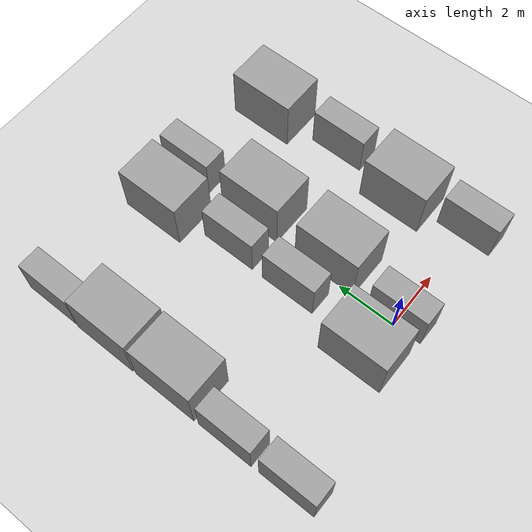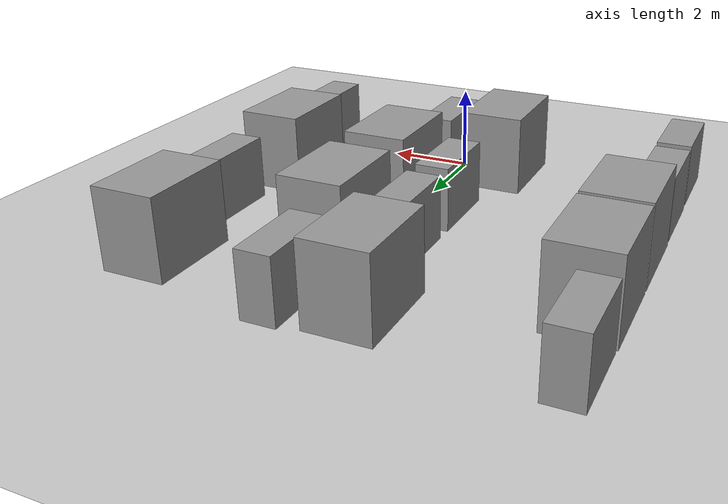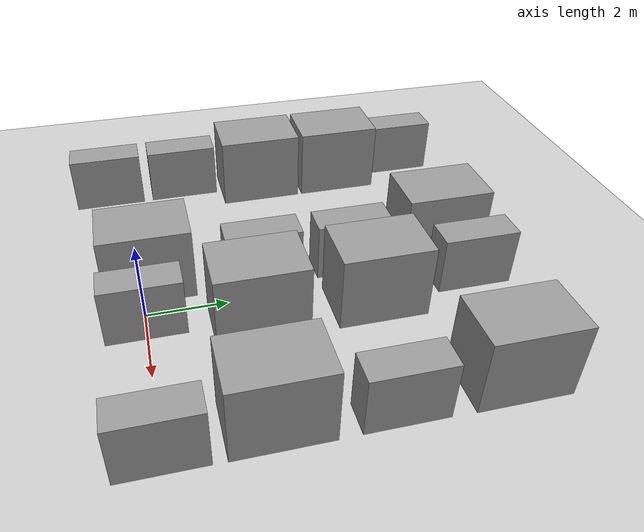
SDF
<sdf version="1.6">
 <world name="default">
  <model name="ground_plane">
   <static>1</static>
   <link name="link">
    <collision name="collision">
     <geometry><plane><normal>0 0 1</normal><size>100 100</size></plane></geometry>
     <surface><friction><ode><mu>100</mu><mu2>50</mu2></ode></friction></surface>
    </collision>
    <visual name="visual">
     <cast_shadows>0</cast_shadows>
     <geometry><plane><normal>0 0 1</normal><size>100 100</size></plane></geometry>
     <material>
      <script><uri>file://media/materials/scripts/gazebo.material</uri><name>Gazebo/Grey</name></script>
     </material>
    </visual>
   </link>
  </model>
  <model name="Machine_08x19">
   <link name="link_1">
    <pose>0 0 0.95 0 -0 0</pose>
    <inertial>
     <mass>1000</mass>
     <inertia><ixx>488.333</ixx><ixy>0</ixy><ixz>0</ixz><iyy>240.833</iyy><iyz>0</iyz><izz>354.167</izz></inertia>
    </inertial>
    <visual name="visual">
     <geometry><box><size>0.8 1.9 1.5</size></box></geometry>
     <material>
      <lighting>1</lighting>
      <script><uri>file://media/materials/scripts/gazebo.material</uri><name>Gazebo/Grey</name></script>
      <ambient>0.3 0.3 0.3 1</ambient>
      <diffuse>0.7 0.7 0.7 1</diffuse>
      <specular>0.01 0.01 0.01 1</specular>
      <emissive>0 0 0 1</emissive>
      <shader type="vertex"><normal_map>__default__</normal_map></shader>
     </material>
    </visual>
    <collision name="collision">
     <geometry><box><size>0.8 1.9 1.5</size></box></geometry>
     <surface>
      <friction>
       <ode><mu>1</mu><mu2>1</mu2><fdir1>0 0 0</fdir1><slip1>0</slip1><slip2>0</slip2></ode>
       <torsional>
        <coefficient>1</coefficient>
        <patch_radius>0</patch_radius>
        <surface_radius>0</surface_radius>
        <use_patch_radius>1</use_patch_radius>
        <ode><slip>0</slip></ode>
       </torsional>
      </friction>
      <bounce><restitution_coefficient>0</restitution_coefficient><threshold>1e+06</threshold></bounce>
      <contact>
       <collide_without_contact>0</collide_without_contact>
       <collide_without_contact_bitmask>1</collide_without_contact_bitmask>
       <collide_bitmask>1</collide_bitmask>
       <ode>
        <soft_cfm>0</soft_cfm>
        <soft_erp>0.2</soft_erp>
        <kp>1e+13</kp>
        <kd>1</kd>
        <max_vel>0.01</max_vel>
        <min_depth>0</min_depth>
       </ode>
       <bullet>
        <split_impulse>1</split_impulse>
        <split_impulse_penetration_threshold>-0.01</split_impulse_penetration_threshold>
        <soft_cfm>0</soft_cfm>
        <soft_erp>0.2</soft_erp>
        <kp>1e+13</kp>
        <kd>1</kd>
       </bullet>
      </contact>
     </surface>
    </collision>
   </link>
   <static>0</static>
   <pose>0.405714 -0.010713 -0.2 0 -0 0</pose>
  </model>
  <model name="Machine_15x22">
   <link name="link_1">
    <inertial>
     <mass>1000</mass>
     <inertia><ixx>704.167</ixx><ixy>0</ixy><ixz>0</ixz><iyy>488.333</iyy><iyz>0</iyz><izz>590.833</izz></inertia>
    </inertial>
    <visual name="visual">
     <geometry><box><size>1.5 2.2 1.9</size></box></geometry>
     <material>
      <lighting>1</lighting>
      <script><uri>file://media/materials/scripts/gazebo.material</uri><name>Gazebo/Grey</name></script>
      <ambient>0.3 0.3 0.3 1</ambient>
      <diffuse>0.7 0.7 0.7 1</diffuse>
      <specular>0.01 0.01 0.01 1</specular>
      <emissive>0 0 0 1</emissive>
      <shader type="vertex"><normal_map>__default__</normal_map></shader>
     </material>
    </visual>
    <collision name="collision">
     <geometry><box><size>1.5 2.2 1.9</size></box></geometry>
     <surface>
      <friction>
       <ode><mu>1</mu><mu2>1</mu2><fdir1>0 0 0</fdir1><slip1>0</slip1><slip2>0</slip2></ode>
       <torsional>
        <coefficient>1</coefficient>
        <patch_radius>0</patch_radius>
        <surface_radius>0</surface_radius>
        <use_patch_radius>1</use_patch_radius>
        <ode><slip>0</slip></ode>
       </torsional>
      </friction>
      <bounce><restitution_coefficient>0</restitution_coefficient><threshold>1e+06</threshold></bounce>
      <contact>
       <collide_without_contact>0</collide_without_contact>
       <collide_without_contact_bitmask>1</collide_without_contact_bitmask>
       <collide_bitmask>1</collide_bitmask>
       <ode>
        <soft_cfm>0</soft_cfm>
        <soft_erp>0.2</soft_erp>
        <kp>1e+13</kp>
        <kd>1</kd>
        <max_vel>0.01</max_vel>
        <min_depth>0</min_depth>
       </ode>
       <bullet>
        <split_impulse>1</split_impulse>
        <split_impulse_penetration_threshold>-0.01</split_impulse_penetration_threshold>
        <soft_cfm>0</soft_cfm>
        <soft_erp>0.2</soft_erp>
        <kp>1e+13</kp>
        <kd>1</kd>
       </bullet>
      </contact>
     </surface>
    </collision>
   </link>
   <static>0</static>
   <pose>0.76024 2.59177 0.95 0 -0 0</pose>
  </model>
  <model name="Machine_15x22_clone_clone_0">
   <link name="link_1">
    <inertial>
     <mass>1000</mass>
     <inertia><ixx>704.167</ixx><ixy>0</ixy><ixz>0</ixz><iyy>488.333</iyy><iyz>0</iyz><izz>590.833</izz></inertia>
    </inertial>
    <visual name="visual">
     <geometry><box><size>1.5 2.2 1.9</size></box></geometry>
     <material>
      <lighting>1</lighting>
      <script><uri>file://media/materials/scripts/gazebo.material</uri><name>Gazebo/Grey</name></script>
      <ambient>0.3 0.3 0.3 1</ambient>
      <diffuse>0.7 0.7 0.7 1</diffuse>
      <specular>0.01 0.01 0.01 1</specular>
      <emissive>0 0 0 1</emissive>
      <shader type="vertex"><normal_map>__default__</normal_map></shader>
     </material>
    </visual>
    <collision name="collision">
     <geometry><box><size>1.5 2.2 1.9</size></box></geometry>
     <surface>
      <friction>
       <ode><mu>1</mu><mu2>1</mu2><fdir1>0 0 0</fdir1><slip1>0</slip1><slip2>0</slip2></ode>
       <torsional>
        <coefficient>1</coefficient>
        <patch_radius>0</patch_radius>
        <surface_radius>0</surface_radius>
        <use_patch_radius>1</use_patch_radius>
        <ode><slip>0</slip></ode>
       </torsional>
      </friction>
      <bounce><restitution_coefficient>0</restitution_coefficient><threshold>1e+06</threshold></bounce>
      <contact>
       <collide_without_contact>0</collide_without_contact>
       <collide_without_contact_bitmask>1</collide_without_contact_bitmask>
       <collide_bitmask>1</collide_bitmask>
       <ode>
        <soft_cfm>0</soft_cfm>
        <soft_erp>0.2</soft_erp>
        <kp>1e+13</kp>
        <kd>1</kd>
        <max_vel>0.01</max_vel>
        <min_depth>0</min_depth>
       </ode>
       <bullet>
        <split_impulse>1</split_impulse>
        <split_impulse_penetration_threshold>-0.01</split_impulse_penetration_threshold>
        <soft_cfm>0</soft_cfm>
        <soft_erp>0.2</soft_erp>
        <kp>1e+13</kp>
        <kd>1</kd>
       </bullet>
      </contact>
     </surface>
    </collision>
   </link>
   <static>0</static>
   <pose>-1.19751 0.209867 0.95 0 -0 0</pose>
  </model>
  <model name="Machine_15x22_clone_clone_3">
   <link name="link_1">
    <inertial>
     <mass>1000</mass>
     <inertia><ixx>704.167</ixx><ixy>0</ixy><ixz>0</ixz><iyy>488.333</iyy><iyz>0</iyz><izz>590.833</izz></inertia>
    </inertial>
    <visual name="visual">
     <geometry><box><size>1.5 2.2 1.9</size></box></geometry>
     <material>
      <lighting>1</lighting>
      <script><uri>file://media/materials/scripts/gazebo.material</uri><name>Gazebo/Grey</name></script>
      <ambient>0.3 0.3 0.3 1</ambient>
      <diffuse>0.7 0.7 0.7 1</diffuse>
      <specular>0.01 0.01 0.01 1</specular>
      <emissive>0 0 0 1</emissive>
      <shader type="vertex"><normal_map>__default__</normal_map></shader>
     </material>
    </visual>
    <collision name="collision">
     <geometry><box><size>1.5 2.2 1.9</size></box></geometry>
     <surface>
      <friction>
       <ode><mu>1</mu><mu2>1</mu2><fdir1>0 0 0</fdir1><slip1>0</slip1><slip2>0</slip2></ode>
       <torsional>
        <coefficient>1</coefficient>
        <patch_radius>0</patch_radius>
        <surface_radius>0</surface_radius>
        <use_patch_radius>1</use_patch_radius>
        <ode><slip>0</slip></ode>
       </torsional>
      </friction>
      <bounce><restitution_coefficient>0</restitution_coefficient><threshold>1e+06</threshold></bounce>
      <contact>
       <collide_without_contact>0</collide_without_contact>
       <collide_without_contact_bitmask>1</collide_without_contact_bitmask>
       <collide_bitmask>1</collide_bitmask>
       <ode>
        <soft_cfm>0</soft_cfm>
        <soft_erp>0.2</soft_erp>
        <kp>1e+13</kp>
        <kd>1</kd>
        <max_vel>0.01</max_vel>
        <min_depth>0</min_depth>
       </ode>
       <bullet>
        <split_impulse>1</split_impulse>
        <split_impulse_penetration_threshold>-0.01</split_impulse_penetration_threshold>
        <soft_cfm>0</soft_cfm>
        <soft_erp>0.2</soft_erp>
        <kp>1e+13</kp>
        <kd>1</kd>
       </bullet>
      </contact>
     </surface>
    </collision>
   </link>
   <static>0</static>
   <pose>0.741989 5.47826 0.95 0 -0 0</pose>
  </model>
  <model name="Machine_15x22_clone_clone_6">
   <link name="link_1">
    <inertial>
     <mass>1000</mass>
     <inertia><ixx>704.167</ixx><ixy>0</ixy><ixz>0</ixz><iyy>488.333</iyy><iyz>0</iyz><izz>590.833</izz></inertia>
    </inertial>
    <visual name="visual">
     <geometry><box><size>1.5 2.2 1.9</size></box></geometry>
     <material>
      <lighting>1</lighting>
      <script><uri>file://media/materials/scripts/gazebo.material</uri><name>Gazebo/Grey</name></script>
      <ambient>0.3 0.3 0.3 1</ambient>
      <diffuse>0.7 0.7 0.7 1</diffuse>
      <specular>0.01 0.01 0.01 1</specular>
      <emissive>0 0 0 1</emissive>
      <shader type="vertex"><normal_map>__default__</normal_map></shader>
     </material>
    </visual>
    <collision name="collision">
     <geometry><box><size>1.5 2.2 1.9</size></box></geometry>
     <surface>
      <friction>
       <ode><mu>1</mu><mu2>1</mu2><fdir1>0 0 0</fdir1><slip1>0</slip1><slip2>0</slip2></ode>
       <torsional>
        <coefficient>1</coefficient>
        <patch_radius>0</patch_radius>
        <surface_radius>0</surface_radius>
        <use_patch_radius>1</use_patch_radius>
        <ode><slip>0</slip></ode>
       </torsional>
      </friction>
      <bounce><restitution_coefficient>0</restitution_coefficient><threshold>1e+06</threshold></bounce>
      <contact>
       <collide_without_contact>0</collide_without_contact>
       <collide_without_contact_bitmask>1</collide_without_contact_bitmask>
       <collide_bitmask>1</collide_bitmask>
       <ode>
        <soft_cfm>0</soft_cfm>
        <soft_erp>0.2</soft_erp>
        <kp>1e+13</kp>
        <kd>1</kd>
        <max_vel>0.01</max_vel>
        <min_depth>0</min_depth>
       </ode>
       <bullet>
        <split_impulse>1</split_impulse>
        <split_impulse_penetration_threshold>-0.01</split_impulse_penetration_threshold>
        <soft_cfm>0</soft_cfm>
        <soft_erp>0.2</soft_erp>
        <kp>1e+13</kp>
        <kd>1</kd>
       </bullet>
      </contact>
     </surface>
    </collision>
   </link>
   <static>0</static>
   <pose>-5.11143 3.77632 0.95 0 -0 0</pose>
  </model>
  <model name="Machine_15x22_clone_clone_9">
   <link name="link_1">
    <inertial>
     <mass>1000</mass>
     <inertia><ixx>704.167</ixx><ixy>0</ixy><ixz>0</ixz><iyy>488.333</iyy><iyz>0</iyz><izz>590.833</izz></inertia>
    </inertial>
    <visual name="visual">
     <geometry><box><size>1.5 2.2 1.9</size></box></geometry>
     <material>
      <lighting>1</lighting>
      <script><uri>file://media/materials/scripts/gazebo.material</uri><name>Gazebo/Grey</name></script>
      <ambient>0.3 0.3 0.3 1</ambient>
      <diffuse>0.7 0.7 0.7 1</diffuse>
      <specular>0.01 0.01 0.01 1</specular>
      <emissive>0 0 0 1</emissive>
      <shader type="vertex"><normal_map>__default__</normal_map></shader>
     </material>
    </visual>
    <collision name="collision">
     <geometry><box><size>1.5 2.2 1.9</size></box></geometry>
     <surface>
      <friction>
       <ode><mu>1</mu><mu2>1</mu2><fdir1>0 0 0</fdir1><slip1>0</slip1><slip2>0</slip2></ode>
       <torsional>
        <coefficient>1</coefficient>
        <patch_radius>0</patch_radius>
        <surface_radius>0</surface_radius>
        <use_patch_radius>1</use_patch_radius>
        <ode><slip>0</slip></ode>
       </torsional>
      </friction>
      <bounce><restitution_coefficient>0</restitution_coefficient><threshold>1e+06</threshold></bounce>
      <contact>
       <collide_without_contact>0</collide_without_contact>
       <collide_without_contact_bitmask>1</collide_without_contact_bitmask>
       <collide_bitmask>1</collide_bitmask>
       <ode>
        <soft_cfm>0</soft_cfm>
        <soft_erp>0.2</soft_erp>
        <kp>1e+13</kp>
        <kd>1</kd>
        <max_vel>0.01</max_vel>
        <min_depth>0</min_depth>
       </ode>
       <bullet>
        <split_impulse>1</split_impulse>
        <split_impulse_penetration_threshold>-0.01</split_impulse_penetration_threshold>
        <soft_cfm>0</soft_cfm>
        <soft_erp>0.2</soft_erp>
        <kp>1e+13</kp>
        <kd>1</kd>
       </bullet>
      </contact>
     </surface>
    </collision>
   </link>
   <static>0</static>
   <pose>3.74714 2.32081 0.95 0 -0 0</pose>
  </model>
  <model name="Machine_15x22_clone_clone_10">
   <link name="link_1">
    <inertial>
     <mass>1000</mass>
     <inertia><ixx>704.167</ixx><ixy>0</ixy><ixz>0</ixz><iyy>488.333</iyy><iyz>0</iyz><izz>590.833</izz></inertia>
    </inertial>
    <visual name="visual">
     <geometry><box><size>1.5 2.2 1.9</size></box></geometry>
     <material>
      <lighting>1</lighting>
      <script><uri>file://media/materials/scripts/gazebo.material</uri><name>Gazebo/Grey</name></script>
      <ambient>0.3 0.3 0.3 1</ambient>
      <diffuse>0.7 0.7 0.7 1</diffuse>
      <specular>0.01 0.01 0.01 1</specular>
      <emissive>0 0 0 1</emissive>
      <shader type="vertex"><normal_map>__default__</normal_map></shader>
     </material>
    </visual>
    <collision name="collision">
     <geometry><box><size>1.5 2.2 1.9</size></box></geometry>
     <surface>
      <friction>
       <ode><mu>1</mu><mu2>1</mu2><fdir1>0 0 0</fdir1><slip1>0</slip1><slip2>0</slip2></ode>
       <torsional>
        <coefficient>1</coefficient>
        <patch_radius>0</patch_radius>
        <surface_radius>0</surface_radius>
        <use_patch_radius>1</use_patch_radius>
        <ode><slip>0</slip></ode>
       </torsional>
      </friction>
      <bounce><restitution_coefficient>0</restitution_coefficient><threshold>1e+06</threshold></bounce>
      <contact>
       <collide_without_contact>0</collide_without_contact>
       <collide_without_contact_bitmask>1</collide_without_contact_bitmask>
       <collide_bitmask>1</collide_bitmask>
       <ode>
        <soft_cfm>0</soft_cfm>
        <soft_erp>0.2</soft_erp>
        <kp>1e+13</kp>
        <kd>1</kd>
        <max_vel>0.01</max_vel>
        <min_depth>0</min_depth>
       </ode>
       <bullet>
        <split_impulse>1</split_impulse>
        <split_impulse_penetration_threshold>-0.01</split_impulse_penetration_threshold>
        <soft_cfm>0</soft_cfm>
        <soft_erp>0.2</soft_erp>
        <kp>1e+13</kp>
        <kd>1</kd>
       </bullet>
      </contact>
     </surface>
    </collision>
   </link>
   <static>0</static>
   <pose>3.76584 7.46429 0.95 0 -0 0</pose>
  </model>
  <model name="Machine_08x19_clone">
   <link name="link_1">
    <pose>0 0 0.95 0 -0 0</pose>
    <inertial>
     <mass>1000</mass>
     <inertia><ixx>488.333</ixx><ixy>0</ixy><ixz>0</ixz><iyy>240.833</iyy><iyz>0</iyz><izz>354.167</izz></inertia>
    </inertial>
    <visual name="visual">
     <geometry><box><size>0.8 1.9 1.5</size></box></geometry>
     <material>
      <lighting>1</lighting>
      <script><uri>file://media/materials/scripts/gazebo.material</uri><name>Gazebo/Grey</name></script>
      <ambient>0.3 0.3 0.3 1</ambient>
      <diffuse>0.7 0.7 0.7 1</diffuse>
      <specular>0.01 0.01 0.01 1</specular>
      <emissive>0 0 0 1</emissive>
      <shader type="vertex"><normal_map>__default__</normal_map></shader>
     </material>
    </visual>
    <collision name="collision">
     <geometry><box><size>0.8 1.9 1.5</size></box></geometry>
     <surface>
      <friction>
       <ode><mu>1</mu><mu2>1</mu2><fdir1>0 0 0</fdir1><slip1>0</slip1><slip2>0</slip2></ode>
       <torsional>
        <coefficient>1</coefficient>
        <patch_radius>0</patch_radius>
        <surface_radius>0</surface_radius>
        <use_patch_radius>1</use_patch_radius>
        <ode><slip>0</slip></ode>
       </torsional>
      </friction>
      <bounce><restitution_coefficient>0</restitution_coefficient><threshold>1e+06</threshold></bounce>
      <contact>
       <collide_without_contact>0</collide_without_contact>
       <collide_without_contact_bitmask>1</collide_without_contact_bitmask>
       <collide_bitmask>1</collide_bitmask>
       <ode>
        <soft_cfm>0</soft_cfm>
        <soft_erp>0.2</soft_erp>
        <kp>1e+13</kp>
        <kd>1</kd>
        <max_vel>0.01</max_vel>
        <min_depth>0</min_depth>
       </ode>
       <bullet>
        <split_impulse>1</split_impulse>
        <split_impulse_penetration_threshold>-0.01</split_impulse_penetration_threshold>
        <soft_cfm>0</soft_cfm>
        <soft_erp>0.2</soft_erp>
        <kp>1e+13</kp>
        <kd>1</kd>
       </bullet>
      </contact>
     </surface>
    </collision>
   </link>
   <static>0</static>
   <pose>-5.42861 -0.580294 -0.2 0 -0 0</pose>
  </model>
  <model name="Machine_08x19_clone_0">
   <link name="link_1">
    <pose>0 0 0.95 0 -0 0</pose>
    <inertial>
     <mass>1000</mass>
     <inertia><ixx>488.333</ixx><ixy>0</ixy><ixz>0</ixz><iyy>240.833</iyy><iyz>0</iyz><izz>354.167</izz></inertia>
    </inertial>
    <visual name="visual">
     <geometry><box><size>0.8 1.9 1.5</size></box></geometry>
     <material>
      <lighting>1</lighting>
      <script><uri>file://media/materials/scripts/gazebo.material</uri><name>Gazebo/Grey</name></script>
      <ambient>0.3 0.3 0.3 1</ambient>
      <diffuse>0.7 0.7 0.7 1</diffuse>
      <specular>0.01 0.01 0.01 1</specular>
      <emissive>0 0 0 1</emissive>
      <shader type="vertex"><normal_map>__default__</normal_map></shader>
     </material>
    </visual>
    <collision name="collision">
     <geometry><box><size>0.8 1.9 1.5</size></box></geometry>
     <surface>
      <friction>
       <ode><mu>1</mu><mu2>1</mu2><fdir1>0 0 0</fdir1><slip1>0</slip1><slip2>0</slip2></ode>
       <torsional>
        <coefficient>1</coefficient>
        <patch_radius>0</patch_radius>
        <surface_radius>0</surface_radius>
        <use_patch_radius>1</use_patch_radius>
        <ode><slip>0</slip></ode>
       </torsional>
      </friction>
      <bounce><restitution_coefficient>0</restitution_coefficient><threshold>1e+06</threshold></bounce>
      <contact>
       <collide_without_contact>0</collide_without_contact>
       <collide_without_contact_bitmask>1</collide_without_contact_bitmask>
       <collide_bitmask>1</collide_bitmask>
       <ode>
        <soft_cfm>0</soft_cfm>
        <soft_erp>0.2</soft_erp>
        <kp>1e+13</kp>
        <kd>1</kd>
        <max_vel>0.01</max_vel>
        <min_depth>0</min_depth>
       </ode>
       <bullet>
        <split_impulse>1</split_impulse>
        <split_impulse_penetration_threshold>-0.01</split_impulse_penetration_threshold>
        <soft_cfm>0</soft_cfm>
        <soft_erp>0.2</soft_erp>
        <kp>1e+13</kp>
        <kd>1</kd>
       </bullet>
      </contact>
     </surface>
    </collision>
   </link>
   <static>0</static>
   <pose>-5.4446 1.57197 -0.2 0 -0 0</pose>
  </model>
  <model name="Machine_08x19_clone_1">
   <link name="link_1">
    <pose>0 0 0.95 0 -0 0</pose>
    <inertial>
     <mass>1000</mass>
     <inertia><ixx>488.333</ixx><ixy>0</ixy><ixz>0</ixz><iyy>240.833</iyy><iyz>0</iyz><izz>354.167</izz></inertia>
    </inertial>
    <visual name="visual">
     <geometry><box><size>0.8 1.9 1.5</size></box></geometry>
     <material>
      <lighting>1</lighting>
      <script><uri>file://media/materials/scripts/gazebo.material</uri><name>Gazebo/Grey</name></script>
      <ambient>0.3 0.3 0.3 1</ambient>
      <diffuse>0.7 0.7 0.7 1</diffuse>
      <specular>0.01 0.01 0.01 1</specular>
      <emissive>0 0 0 1</emissive>
      <shader type="vertex"><normal_map>__default__</normal_map></shader>
     </material>
    </visual>
    <collision name="collision">
     <geometry><box><size>0.8 1.9 1.5</size></box></geometry>
     <surface>
      <friction>
       <ode><mu>1</mu><mu2>1</mu2><fdir1>0 0 0</fdir1><slip1>0</slip1><slip2>0</slip2></ode>
       <torsional>
        <coefficient>1</coefficient>
        <patch_radius>0</patch_radius>
        <surface_radius>0</surface_radius>
        <use_patch_radius>1</use_patch_radius>
        <ode><slip>0</slip></ode>
       </torsional>
      </friction>
      <bounce><restitution_coefficient>0</restitution_coefficient><threshold>1e+06</threshold></bounce>
      <contact>
       <collide_without_contact>0</collide_without_contact>
       <collide_without_contact_bitmask>1</collide_without_contact_bitmask>
       <collide_bitmask>1</collide_bitmask>
       <ode>
        <soft_cfm>0</soft_cfm>
        <soft_erp>0.2</soft_erp>
        <kp>1e+13</kp>
        <kd>1</kd>
        <max_vel>0.01</max_vel>
        <min_depth>0</min_depth>
       </ode>
       <bullet>
        <split_impulse>1</split_impulse>
        <split_impulse_penetration_threshold>-0.01</split_impulse_penetration_threshold>
        <soft_cfm>0</soft_cfm>
        <soft_erp>0.2</soft_erp>
        <kp>1e+13</kp>
        <kd>1</kd>
       </bullet>
      </contact>
     </surface>
    </collision>
   </link>
   <static>0</static>
   <pose>-0.817426 3.02752 -0.2 0 -0 0</pose>
  </model>
  <model name="Machine_08x19_clone_2">
   <link name="link_1">
    <pose>0 0 0.95 0 -0 0</pose>
    <inertial>
     <mass>1000</mass>
     <inertia><ixx>488.333</ixx><ixy>0</ixy><ixz>0</ixz><iyy>240.833</iyy><iyz>0</iyz><izz>354.167</izz></inertia>
    </inertial>
    <visual name="visual">
     <geometry><box><size>0.8 1.9 1.5</size></box></geometry>
     <material>
      <lighting>1</lighting>
      <script><uri>file://media/materials/scripts/gazebo.material</uri><name>Gazebo/Grey</name></script>
      <ambient>0.3 0.3 0.3 1</ambient>
      <diffuse>0.7 0.7 0.7 1</diffuse>
      <specular>0.01 0.01 0.01 1</specular>
      <emissive>0 0 0 1</emissive>
      <shader type="vertex"><normal_map>__default__</normal_map></shader>
     </material>
    </visual>
    <collision name="collision">
     <geometry><box><size>0.8 1.9 1.5</size></box></geometry>
     <surface>
      <friction>
       <ode><mu>1</mu><mu2>1</mu2><fdir1>0 0 0</fdir1><slip1>0</slip1><slip2>0</slip2></ode>
       <torsional>
        <coefficient>1</coefficient>
        <patch_radius>0</patch_radius>
        <surface_radius>0</surface_radius>
        <use_patch_radius>1</use_patch_radius>
        <ode><slip>0</slip></ode>
       </torsional>
      </friction>
      <bounce><restitution_coefficient>0</restitution_coefficient><threshold>1e+06</threshold></bounce>
      <contact>
       <collide_without_contact>0</collide_without_contact>
       <collide_without_contact_bitmask>1</collide_without_contact_bitmask>
       <collide_bitmask>1</collide_bitmask>
       <ode>
        <soft_cfm>0</soft_cfm>
        <soft_erp>0.2</soft_erp>
        <kp>1e+13</kp>
        <kd>1</kd>
        <max_vel>0.01</max_vel>
        <min_depth>0</min_depth>
       </ode>
       <bullet>
        <split_impulse>1</split_impulse>
        <split_impulse_penetration_threshold>-0.01</split_impulse_penetration_threshold>
        <soft_cfm>0</soft_cfm>
        <soft_erp>0.2</soft_erp>
        <kp>1e+13</kp>
        <kd>1</kd>
       </bullet>
      </contact>
     </surface>
    </collision>
   </link>
   <static>0</static>
   <pose>4.08566 -0.025438 -0.2 0 -0 0</pose>
  </model>
  <model name="Machine_08x19_clone_4">
   <link name="link_1">
    <pose>0 0 0.95 0 -0 0</pose>
    <inertial>
     <mass>1000</mass>
     <inertia><ixx>488.333</ixx><ixy>0</ixy><ixz>0</ixz><iyy>240.833</iyy><iyz>0</iyz><izz>354.167</izz></inertia>
    </inertial>
    <visual name="visual">
     <geometry><box><size>0.8 1.9 1.5</size></box></geometry>
     <material>
      <lighting>1</lighting>
      <script><uri>file://media/materials/scripts/gazebo.material</uri><name>Gazebo/Grey</name></script>
      <ambient>0.3 0.3 0.3 1</ambient>
      <diffuse>0.7 0.7 0.7 1</diffuse>
      <specular>0.01 0.01 0.01 1</specular>
      <emissive>0 0 0 1</emissive>
      <shader type="vertex"><normal_map>__default__</normal_map></shader>
     </material>
    </visual>
    <collision name="collision">
     <geometry><box><size>0.8 1.9 1.5</size></box></geometry>
     <surface>
      <friction>
       <ode><mu>1</mu><mu2>1</mu2><fdir1>0 0 0</fdir1><slip1>0</slip1><slip2>0</slip2></ode>
       <torsional>
        <coefficient>1</coefficient>
        <patch_radius>0</patch_radius>
        <surface_radius>0</surface_radius>
        <use_patch_radius>1</use_patch_radius>
        <ode><slip>0</slip></ode>
       </torsional>
      </friction>
      <bounce><restitution_coefficient>0</restitution_coefficient><threshold>1e+06</threshold></bounce>
      <contact>
       <collide_without_contact>0</collide_without_contact>
       <collide_without_contact_bitmask>1</collide_without_contact_bitmask>
       <collide_bitmask>1</collide_bitmask>
       <ode>
        <soft_cfm>0</soft_cfm>
        <soft_erp>0.2</soft_erp>
        <kp>1e+13</kp>
        <kd>1</kd>
        <max_vel>0.01</max_vel>
        <min_depth>0</min_depth>
       </ode>
       <bullet>
        <split_impulse>1</split_impulse>
        <split_impulse_penetration_threshold>-0.01</split_impulse_penetration_threshold>
        <soft_cfm>0</soft_cfm>
        <soft_erp>0.2</soft_erp>
        <kp>1e+13</kp>
        <kd>1</kd>
       </bullet>
      </contact>
     </surface>
    </collision>
   </link>
   <static>0</static>
   <pose>0.420552 8.09891 -0.2 0 -0 0</pose>
  </model>
  <model name="Machine_08x19_clone_5">
   <link name="link_1">
    <pose>0 0 0.95 0 -0 0</pose>
    <inertial>
     <mass>1000</mass>
     <inertia><ixx>488.333</ixx><ixy>0</ixy><ixz>0</ixz><iyy>240.833</iyy><iyz>0</iyz><izz>354.167</izz></inertia>
    </inertial>
    <visual name="visual">
     <geometry><box><size>0.8 1.9 1.5</size></box></geometry>
     <material>
      <lighting>1</lighting>
      <script><uri>file://media/materials/scripts/gazebo.material</uri><name>Gazebo/Grey</name></script>
      <ambient>0.3 0.3 0.3 1</ambient>
      <diffuse>0.7 0.7 0.7 1</diffuse>
      <specular>0.01 0.01 0.01 1</specular>
      <emissive>0 0 0 1</emissive>
      <shader type="vertex"><normal_map>__default__</normal_map></shader>
     </material>
    </visual>
    <collision name="collision">
     <geometry><box><size>0.8 1.9 1.5</size></box></geometry>
     <surface>
      <friction>
       <ode><mu>1</mu><mu2>1</mu2><fdir1>0 0 0</fdir1><slip1>0</slip1><slip2>0</slip2></ode>
       <torsional>
        <coefficient>1</coefficient>
        <patch_radius>0</patch_radius>
        <surface_radius>0</surface_radius>
        <use_patch_radius>1</use_patch_radius>
        <ode><slip>0</slip></ode>
       </torsional>
      </friction>
      <bounce><restitution_coefficient>0</restitution_coefficient><threshold>1e+06</threshold></bounce>
      <contact>
       <collide_without_contact>0</collide_without_contact>
       <collide_without_contact_bitmask>1</collide_without_contact_bitmask>
       <collide_bitmask>1</collide_bitmask>
       <ode>
        <soft_cfm>0</soft_cfm>
        <soft_erp>0.2</soft_erp>
        <kp>1e+13</kp>
        <kd>1</kd>
        <max_vel>0.01</max_vel>
        <min_depth>0</min_depth>
       </ode>
       <bullet>
        <split_impulse>1</split_impulse>
        <split_impulse_penetration_threshold>-0.01</split_impulse_penetration_threshold>
        <soft_cfm>0</soft_cfm>
        <soft_erp>0.2</soft_erp>
        <kp>1e+13</kp>
        <kd>1</kd>
       </bullet>
      </contact>
     </surface>
    </collision>
   </link>
   <static>0</static>
   <pose>-5.43857 8.24151 -0.2 0 -0 0</pose>
  </model>
  <model name="Machine_08x19_clone_11">
   <link name="link_1">
    <pose>0 0 0.95 0 -0 0</pose>
    <inertial>
     <mass>1000</mass>
     <inertia><ixx>488.333</ixx><ixy>0</ixy><ixz>0</ixz><iyy>240.833</iyy><iyz>0</iyz><izz>354.167</izz></inertia>
    </inertial>
    <visual name="visual">
     <geometry><box><size>0.8 1.9 1.5</size></box></geometry>
     <material>
      <lighting>1</lighting>
      <script><uri>file://media/materials/scripts/gazebo.material</uri><name>Gazebo/Grey</name></script>
      <ambient>0.3 0.3 0.3 1</ambient>
      <diffuse>0.7 0.7 0.7 1</diffuse>
      <specular>0.01 0.01 0.01 1</specular>
      <emissive>0 0 0 1</emissive>
      <shader type="vertex"><normal_map>__default__</normal_map></shader>
     </material>
    </visual>
    <collision name="collision">
     <geometry><box><size>0.8 1.9 1.5</size></box></geometry>
     <surface>
      <friction>
       <ode><mu>1</mu><mu2>1</mu2><fdir1>0 0 0</fdir1><slip1>0</slip1><slip2>0</slip2></ode>
       <torsional>
        <coefficient>1</coefficient>
        <patch_radius>0</patch_radius>
        <surface_radius>0</surface_radius>
        <use_patch_radius>1</use_patch_radius>
        <ode><slip>0</slip></ode>
       </torsional>
      </friction>
      <bounce><restitution_coefficient>0</restitution_coefficient><threshold>1e+06</threshold></bounce>
      <contact>
       <collide_without_contact>0</collide_without_contact>
       <collide_without_contact_bitmask>1</collide_without_contact_bitmask>
       <collide_bitmask>1</collide_bitmask>
       <ode>
        <soft_cfm>0</soft_cfm>
        <soft_erp>0.2</soft_erp>
        <kp>1e+13</kp>
        <kd>1</kd>
        <max_vel>0.01</max_vel>
        <min_depth>0</min_depth>
       </ode>
       <bullet>
        <split_impulse>1</split_impulse>
        <split_impulse_penetration_threshold>-0.01</split_impulse_penetration_threshold>
        <soft_cfm>0</soft_cfm>
        <soft_erp>0.2</soft_erp>
        <kp>1e+13</kp>
        <kd>1</kd>
       </bullet>
      </contact>
     </surface>
    </collision>
   </link>
   <static>0</static>
   <pose>4.09055 4.8737 -0.2 0 -0 0</pose>
  </model>
  <model name="Machine_08x19_clone_1_clone">
   <link name="link_1">
    <pose>0 0 0.95 0 -0 0</pose>
    <inertial>
     <mass>1000</mass>
     <inertia><ixx>488.333</ixx><ixy>0</ixy><ixz>0</ixz><iyy>240.833</iyy><iyz>0</iyz><izz>354.167</izz></inertia>
    </inertial>
    <visual name="visual">
     <geometry><box><size>0.8 1.9 1.5</size></box></geometry>
     <material>
      <lighting>1</lighting>
      <script><uri>file://media/materials/scripts/gazebo.material</uri><name>Gazebo/Grey</name></script>
      <ambient>0.3 0.3 0.3 1</ambient>
      <diffuse>0.7 0.7 0.7 1</diffuse>
      <specular>0.01 0.01 0.01 1</specular>
      <emissive>0 0 0 1</emissive>
      <shader type="vertex"><normal_map>__default__</normal_map></shader>
     </material>
    </visual>
    <collision name="collision">
     <geometry><box><size>0.8 1.9 1.5</size></box></geometry>
     <surface>
      <friction>
       <ode><mu>1</mu><mu2>1</mu2><fdir1>0 0 0</fdir1><slip1>0</slip1><slip2>0</slip2></ode>
       <torsional>
        <coefficient>1</coefficient>
        <patch_radius>0</patch_radius>
        <surface_radius>0</surface_radius>
        <use_patch_radius>1</use_patch_radius>
        <ode><slip>0</slip></ode>
       </torsional>
      </friction>
      <bounce><restitution_coefficient>0</restitution_coefficient><threshold>1e+06</threshold></bounce>
      <contact>
       <collide_without_contact>0</collide_without_contact>
       <collide_without_contact_bitmask>1</collide_without_contact_bitmask>
       <collide_bitmask>1</collide_bitmask>
       <ode>
        <soft_cfm>0</soft_cfm>
        <soft_erp>0.2</soft_erp>
        <kp>1e+13</kp>
        <kd>1</kd>
        <max_vel>0.01</max_vel>
        <min_depth>0</min_depth>
       </ode>
       <bullet>
        <split_impulse>1</split_impulse>
        <split_impulse_penetration_threshold>-0.01</split_impulse_penetration_threshold>
        <soft_cfm>0</soft_cfm>
        <soft_erp>0.2</soft_erp>
        <kp>1e+13</kp>
        <kd>1</kd>
       </bullet>
      </contact>
     </surface>
    </collision>
   </link>
   <static>0</static>
   <pose>-0.807791 5.32383 -0.2 0 -0 0</pose>
  </model>
  <model name="Machine_15x22_clone_clone_0_clone">
   <link name="link_1">
    <inertial>
     <mass>1000</mass>
     <inertia><ixx>704.167</ixx><ixy>0</ixy><ixz>0</ixz><iyy>488.333</iyy><iyz>0</iyz><izz>590.833</izz></inertia>
    </inertial>
    <visual name="visual">
     <geometry><box><size>1.5 2.2 1.9</size></box></geometry>
     <material>
      <lighting>1</lighting>
      <script><uri>file://media/materials/scripts/gazebo.material</uri><name>Gazebo/Grey</name></script>
      <ambient>0.3 0.3 0.3 1</ambient>
      <diffuse>0.7 0.7 0.7 1</diffuse>
      <specular>0.01 0.01 0.01 1</specular>
      <emissive>0 0 0 1</emissive>
      <shader type="vertex"><normal_map>__default__</normal_map></shader>
     </material>
    </visual>
    <collision name="collision">
     <geometry><box><size>1.5 2.2 1.9</size></box></geometry>
     <surface>
      <friction>
       <ode><mu>1</mu><mu2>1</mu2><fdir1>0 0 0</fdir1><slip1>0</slip1><slip2>0</slip2></ode>
       <torsional>
        <coefficient>1</coefficient>
        <patch_radius>0</patch_radius>
        <surface_radius>0</surface_radius>
        <use_patch_radius>1</use_patch_radius>
        <ode><slip>0</slip></ode>
       </torsional>
      </friction>
      <bounce><restitution_coefficient>0</restitution_coefficient><threshold>1e+06</threshold></bounce>
      <contact>
       <collide_without_contact>0</collide_without_contact>
       <collide_without_contact_bitmask>1</collide_without_contact_bitmask>
       <collide_bitmask>1</collide_bitmask>
       <ode>
        <soft_cfm>0</soft_cfm>
        <soft_erp>0.2</soft_erp>
        <kp>1e+13</kp>
        <kd>1</kd>
        <max_vel>0.01</max_vel>
        <min_depth>0</min_depth>
       </ode>
       <bullet>
        <split_impulse>1</split_impulse>
        <split_impulse_penetration_threshold>-0.01</split_impulse_penetration_threshold>
        <soft_cfm>0</soft_cfm>
        <soft_erp>0.2</soft_erp>
        <kp>1e+13</kp>
        <kd>1</kd>
       </bullet>
      </contact>
     </surface>
    </collision>
   </link>
   <static>0</static>
   <pose>-1.14789 7.80096 0.95 0 -0 0</pose>
  </model>
  <model name="Machine_15x22_clone_clone_6_clone">
   <link name="link_1">
    <inertial>
     <mass>1000</mass>
     <inertia><ixx>704.167</ixx><ixy>0</ixy><ixz>0</ixz><iyy>488.333</iyy><iyz>0</iyz><izz>590.833</izz></inertia>
    </inertial>
    <visual name="visual">
     <geometry><box><size>1.5 2.2 1.9</size></box></geometry>
     <material>
      <lighting>1</lighting>
      <script><uri>file://media/materials/scripts/gazebo.material</uri><name>Gazebo/Grey</name></script>
      <ambient>0.3 0.3 0.3 1</ambient>
      <diffuse>0.7 0.7 0.7 1</diffuse>
      <specular>0.01 0.01 0.01 1</specular>
      <emissive>0 0 0 1</emissive>
      <shader type="vertex"><normal_map>__default__</normal_map></shader>
     </material>
    </visual>
    <collision name="collision">
     <geometry><box><size>1.5 2.2 1.9</size></box></geometry>
     <surface>
      <friction>
       <ode><mu>1</mu><mu2>1</mu2><fdir1>0 0 0</fdir1><slip1>0</slip1><slip2>0</slip2></ode>
       <torsional>
        <coefficient>1</coefficient>
        <patch_radius>0</patch_radius>
        <surface_radius>0</surface_radius>
        <use_patch_radius>1</use_patch_radius>
        <ode><slip>0</slip></ode>
       </torsional>
      </friction>
      <bounce><restitution_coefficient>0</restitution_coefficient><threshold>1e+06</threshold></bounce>
      <contact>
       <collide_without_contact>0</collide_without_contact>
       <collide_without_contact_bitmask>1</collide_without_contact_bitmask>
       <collide_bitmask>1</collide_bitmask>
       <ode>
        <soft_cfm>0</soft_cfm>
        <soft_erp>0.2</soft_erp>
        <kp>1e+13</kp>
        <kd>1</kd>
        <max_vel>0.01</max_vel>
        <min_depth>0</min_depth>
       </ode>
       <bullet>
        <split_impulse>1</split_impulse>
        <split_impulse_penetration_threshold>-0.01</split_impulse_penetration_threshold>
        <soft_cfm>0</soft_cfm>
        <soft_erp>0.2</soft_erp>
        <kp>1e+13</kp>
        <kd>1</kd>
       </bullet>
      </contact>
     </surface>
    </collision>
   </link>
   <static>0</static>
   <pose>-5.1129 6.09525 0.95 0 -0 0</pose>
  </model>
 </world>
</sdf>
